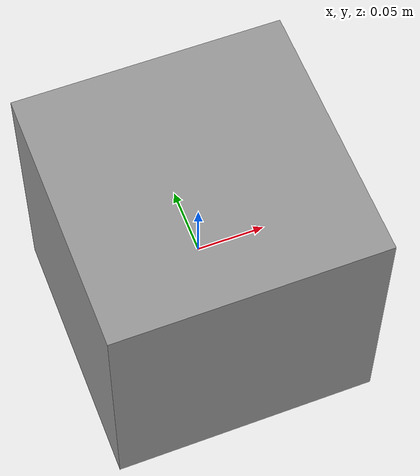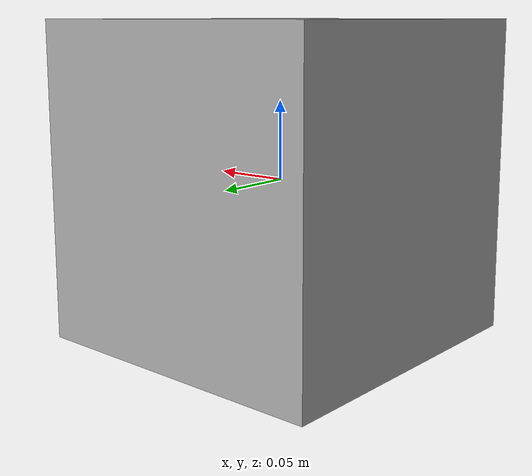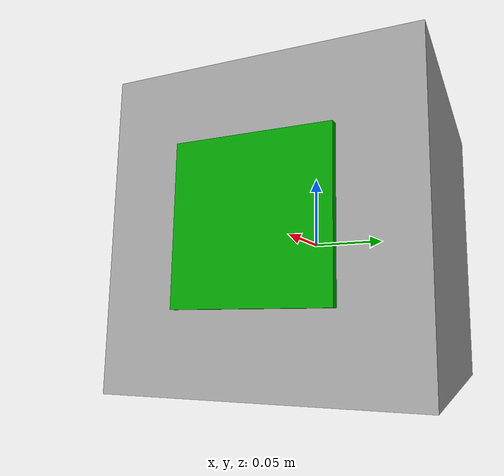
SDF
<?xml version="1.0" ?>
<sdf version="1.4">
  <model name="sensor">
    <pose>0 0 0.0 0 0 0</pose>
    <static>true</static>
    <self_collide>false</self_collide>
    <link name="link">
      <inertial>
        <mass>1.0</mass>
        <inertia>
          <!-- inertias are tricky to compute -->
          <!-- http://gazebosim.org/tutorials?tut=inertia&cat=build_robot -->
          <ixx>0.083</ixx> <!-- for a box: ixx = 0.083 * mass * (y*y + z*z) -->
          <ixy>0.0</ixy> <!-- for a box: ixy = 0 -->
          <ixz>0.0</ixz> <!-- for a box: ixz = 0 -->
          <iyy>0.083</iyy> <!-- for a box: iyy = 0.083 * mass * (x*x + z*z) -->
          <iyz>0.0</iyz> <!-- for a box: iyz = 0 -->
          <izz>0.083</izz> <!-- for a box: izz = 0.083 * mass * (x*x + y*y) -->
        </inertia>
      </inertial>
      <visual name="visual">
        <pose> 0 0 0 0 0 0</pose>
        <geometry>
          <box>
            <size>0.2 0.2 0.2</size>
          </box>
        </geometry>
        <material>
          <ambient>0.6 0.6 0.6 1.0</ambient>
          <diffuse>0.6 0.6 0.6 1.0</diffuse>
        </material>
      </visual>
      <sensor name="radiation_sensor" type="radiation_sensor">
        <always_on> 1 </always_on>
        <update_rate> 100.0 </update_rate>
        <topic>sensor_0</topic>
        <plugin name="radiation_sensor_plugin" filename="libradiation_sensor_plugin.so" />
      </sensor>

    </link>
    <model name="sensor_face">
      <pose>0.1 0 0.0 0 0 0</pose>
      <static>true</static>
      <link name="sensor_face_link">
        <pose>0.0 0 0 0 0 0</pose>
        <visual name="sensor_face_visual">
          <geometry>
            <box>
              <size>0.01 0.1 0.1</size>
            </box>
          </geometry>
          <material>
            <ambient>0.0 0.6 0.0 1.0</ambient>
            <diffuse>0.0 0.6 0.0 1.0</diffuse>
          </material>
        </visual>
      </link>
    </model>

  </model>

</sdf>
